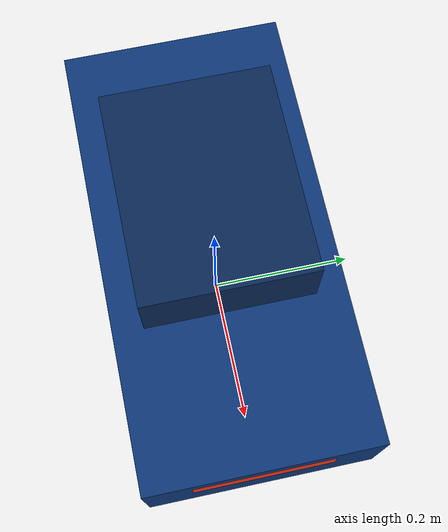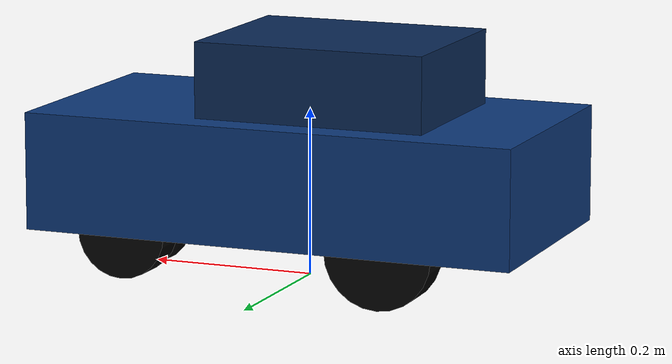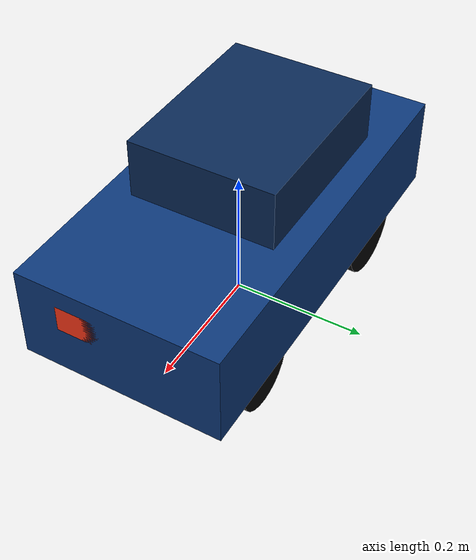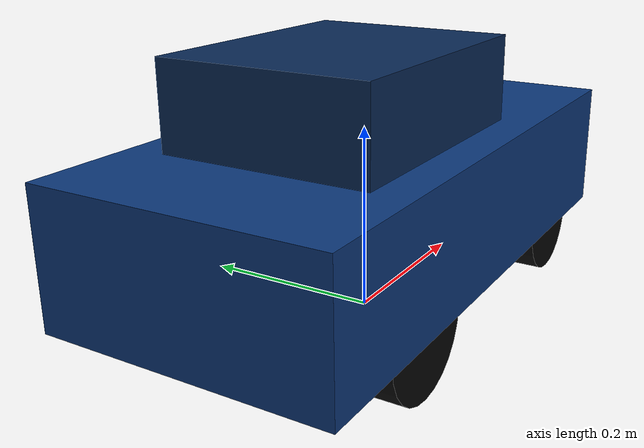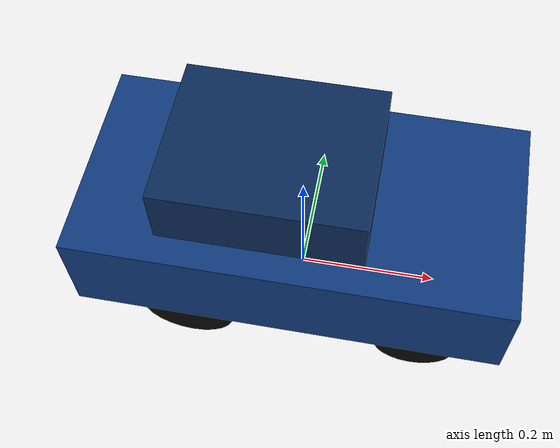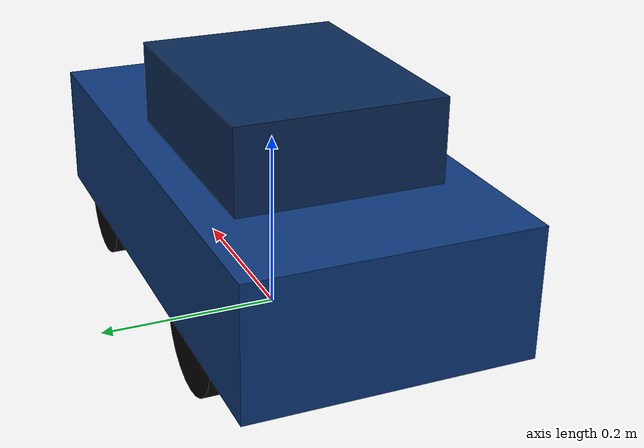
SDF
<?xml version="1.0"?>
<sdf version="1.10">
  <model name="roadmap_car">
    <pose>0 0 0 0 0 0</pose>
    <static>false</static>
    <self_collide>false</self_collide>

    <link name="chassis">
      <pose>0 0 0.13 0 0 0</pose>
      <inertial>
        <mass>4.0</mass>
        <inertia>
          <ixx>0.03653</ixx>
          <ixy>0</ixy>
          <ixz>0</ixz>
          <iyy>0.12653</iyy>
          <iyz>0</iyz>
          <izz>0.15000</izz>
        </inertia>
      </inertial>
      <collision name="collision">
        <geometry>
          <box>
            <size>0.60 0.30 0.14</size>
          </box>
        </geometry>
        <surface>
          <friction>
            <ode>
              <mu>1.5</mu>
              <mu2>1.5</mu2>
            </ode>
          </friction>
        </surface>
      </collision>
      <visual name="body">
        <geometry>
          <box>
            <size>0.60 0.30 0.14</size>
          </box>
        </geometry>
        <material>
          <ambient>0.05 0.18 0.36 1</ambient>
          <diffuse>0.05 0.22 0.48 1</diffuse>
          <specular>0.25 0.25 0.25 1</specular>
        </material>
      </visual>
      <visual name="roof">
        <pose>-0.04 0 0.11 0 0 0</pose>
        <geometry>
          <box>
            <size>0.28 0.22 0.10</size>
          </box>
        </geometry>
        <material>
          <ambient>0.03 0.12 0.25 1</ambient>
          <diffuse>0.04 0.16 0.34 1</diffuse>
          <specular>0.25 0.25 0.25 1</specular>
        </material>
      </visual>
      <visual name="front_marker">
        <pose>0.29 0 0.02 0 0 0</pose>
        <geometry>
          <box>
            <size>0.02 0.18 0.04</size>
          </box>
        </geometry>
        <material>
          <ambient>0.95 0.18 0.08 1</ambient>
          <diffuse>1 0.22 0.10 1</diffuse>
        </material>
      </visual>
      <visual name="front_left_wheel_visual">
        <pose>0.18 0.125 -0.065 1.57079632679 0 0</pose>
        <geometry>
          <cylinder>
            <radius>0.055</radius>
            <length>0.04</length>
          </cylinder>
        </geometry>
        <material>
          <ambient>0.02 0.02 0.02 1</ambient>
          <diffuse>0.02 0.02 0.02 1</diffuse>
        </material>
      </visual>
      <visual name="front_right_wheel_visual">
        <pose>0.18 -0.125 -0.065 1.57079632679 0 0</pose>
        <geometry>
          <cylinder>
            <radius>0.055</radius>
            <length>0.04</length>
          </cylinder>
        </geometry>
        <material>
          <ambient>0.02 0.02 0.02 1</ambient>
          <diffuse>0.02 0.02 0.02 1</diffuse>
        </material>
      </visual>
      <sensor name="front_camera" type="camera">
        <pose>0.31 0 0.08 0 0 0</pose>
        <always_on>true</always_on>
        <update_rate>20</update_rate>
        <visualize>true</visualize>
        <topic>/model/roadmap_car/front_camera/image</topic>
        <camera>
          <camera_info_topic>/model/roadmap_car/front_camera/camera_info</camera_info_topic>
          <horizontal_fov>1.3962634</horizontal_fov>
          <image>
            <width>640</width>
            <height>480</height>
            <format>R8G8B8</format>
          </image>
          <clip>
            <near>0.05</near>
            <far>50</far>
          </clip>
        </camera>
      </sensor>
    </link>

    <link name="left_wheel">
      <pose>-0.14 0.125 0.065 1.57079632679 0 0</pose>
      <inertial>
        <mass>0.2</mass>
        <inertia>
          <ixx>0.000238</ixx>
          <ixy>0</ixy>
          <ixz>0</ixz>
          <iyy>0.000238</iyy>
          <iyz>0</iyz>
          <izz>0.000423</izz>
        </inertia>
      </inertial>
      <collision name="collision">
        <geometry>
          <cylinder>
            <radius>0.065</radius>
            <length>0.04</length>
          </cylinder>
        </geometry>
        <surface>
          <friction>
            <ode>
              <mu>2.0</mu>
              <mu2>2.0</mu2>
            </ode>
          </friction>
        </surface>
      </collision>
      <visual name="visual">
        <geometry>
          <cylinder>
            <radius>0.065</radius>
            <length>0.04</length>
          </cylinder>
        </geometry>
        <material>
          <ambient>0.02 0.02 0.02 1</ambient>
          <diffuse>0.02 0.02 0.02 1</diffuse>
        </material>
      </visual>
    </link>

    <link name="right_wheel">
      <pose>-0.14 -0.125 0.065 1.57079632679 0 0</pose>
      <inertial>
        <mass>0.2</mass>
        <inertia>
          <ixx>0.000238</ixx>
          <ixy>0</ixy>
          <ixz>0</ixz>
          <iyy>0.000238</iyy>
          <iyz>0</iyz>
          <izz>0.000423</izz>
        </inertia>
      </inertial>
      <collision name="collision">
        <geometry>
          <cylinder>
            <radius>0.065</radius>
            <length>0.04</length>
          </cylinder>
        </geometry>
        <surface>
          <friction>
            <ode>
              <mu>2.0</mu>
              <mu2>2.0</mu2>
            </ode>
          </friction>
        </surface>
      </collision>
      <visual name="visual">
        <geometry>
          <cylinder>
            <radius>0.065</radius>
            <length>0.04</length>
          </cylinder>
        </geometry>
        <material>
          <ambient>0.02 0.02 0.02 1</ambient>
          <diffuse>0.02 0.02 0.02 1</diffuse>
        </material>
      </visual>
    </link>

    <link name="front_caster">
      <pose>0.20 0 0.04 0 0 0</pose>
      <inertial>
        <mass>0.05</mass>
        <inertia>
          <ixx>0.000032</ixx>
          <ixy>0</ixy>
          <ixz>0</ixz>
          <iyy>0.000032</iyy>
          <iyz>0</iyz>
          <izz>0.000032</izz>
        </inertia>
      </inertial>
      <collision name="collision">
        <geometry>
          <sphere>
            <radius>0.04</radius>
          </sphere>
        </geometry>
        <surface>
          <friction>
            <ode>
              <mu>0.05</mu>
              <mu2>0.05</mu2>
            </ode>
          </friction>
        </surface>
      </collision>
      <visual name="visual">
        <geometry>
          <sphere>
            <radius>0.04</radius>
          </sphere>
        </geometry>
        <material>
          <ambient>0.02 0.02 0.02 1</ambient>
          <diffuse>0.02 0.02 0.02 1</diffuse>
        </material>
      </visual>
    </link>

    <joint name="left_wheel_joint" type="revolute">
      <parent>chassis</parent>
      <child>left_wheel</child>
      <axis>
        <xyz>0 1 0</xyz>
        <limit>
          <lower>-1e16</lower>
          <upper>1e16</upper>
        </limit>
        <dynamics>
          <damping>0.01</damping>
          <friction>0.0</friction>
        </dynamics>
      </axis>
    </joint>

    <joint name="right_wheel_joint" type="revolute">
      <parent>chassis</parent>
      <child>right_wheel</child>
      <axis>
        <xyz>0 1 0</xyz>
        <limit>
          <lower>-1e16</lower>
          <upper>1e16</upper>
        </limit>
        <dynamics>
          <damping>0.01</damping>
          <friction>0.0</friction>
        </dynamics>
      </axis>
    </joint>

    <joint name="front_caster_joint" type="fixed">
      <parent>chassis</parent>
      <child>front_caster</child>
    </joint>

    <plugin filename="gz-sim-velocity-control-system" name="gz::sim::systems::VelocityControl">
      <topic>/cmd_vel</topic>
    </plugin>

    <plugin filename="gz-sim-odometry-publisher-system" name="gz::sim::systems::OdometryPublisher">
      <odom_topic>/model/roadmap_car/odometry</odom_topic>
      <tf_topic>/model/roadmap_car/tf</tf_topic>
      <odom_frame>odom</odom_frame>
      <robot_base_frame>roadmap_car/chassis</robot_base_frame>
      <odom_publish_frequency>30</odom_publish_frequency>
      <dimensions>2</dimensions>
    </plugin>
  </model>
</sdf>
